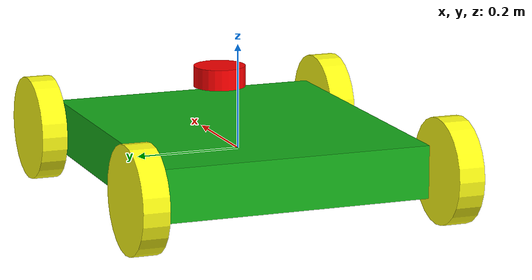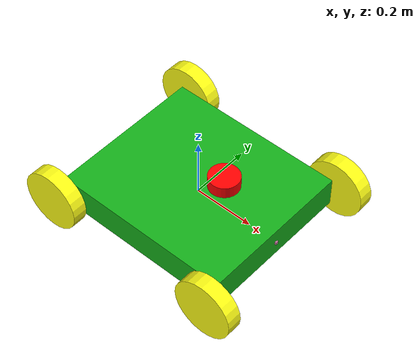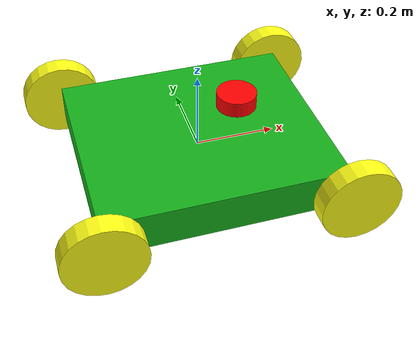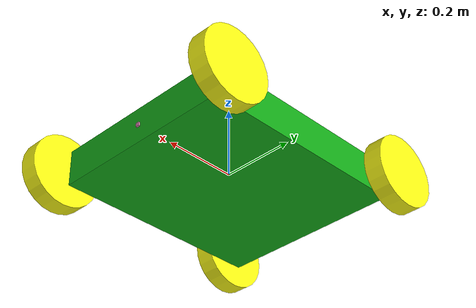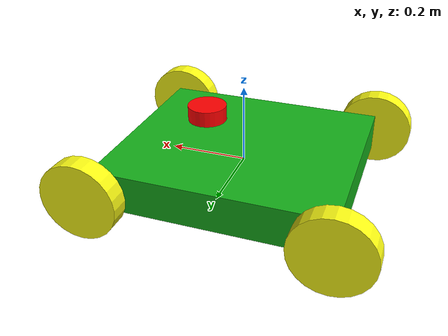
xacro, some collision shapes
<?xml version='1.0'?>

<robot name="myrobot" xmlns:xacro="http://www.ros.org/wiki/xacro">

  <xacro:property name="mass" value="5" />

  <xacro:property name="radius" value="0.1" />
  <xacro:property name="length" value="0.05" />

  <xacro:property name="wheel_width" value="0.010" />
  <xacro:property name="box_height" value="0.6" />
  <xacro:property name="box_width" value="0.52" />
  <xacro:property name="box_length" value="0.1" />
  <xacro:property name="euler" value="1.5707" />
  <xacro:property name="friction" value="0" />
  <xacro:property name="damping" value="0" />

  <link name='base_link'>
    <pose>0 0 0.1 0 0 0</pose>

    <inertial>
      <mass value="${mass}"/>
      <origin xyz="0.0 0 0.1" rpy=" 0 0 0"/>
      <inertia
          ixx="0.1" ixy="0" ixz="0"
          iyy="0.1" iyz="0"
          izz="0.1"
      />
    </inertial>

    <collision name='collision'>
      <geometry>
        <box size="${box_height} ${box_width} ${box_length} "/>
      </geometry>
    </collision>

    <visual name='govde_visual'>
      <origin xyz="0 0 0" rpy=" 0 0 0"/>
      <geometry>
        <box size="${box_height} ${box_width} ${box_length} "/>
      </geometry>
      <material name="green"/>
    </visual>

  </link>

  <link name="sol_on_teker">
    <collision name="collision">
      <origin xyz="0 0 0" rpy="0 ${euler} ${euler}"/>
      <geometry>
        <cylinder radius="${radius}" length="${length}"/>
      </geometry>
    </collision>

    <visual name="sol_on_teker_visual">
      <origin xyz="0 0 0" rpy="0 ${euler} ${euler}"/>
      <geometry>
        <cylinder radius="${radius}" length="${length}"/>
      </geometry>
      <material name="yellow"/>
    </visual>
    <inertial>
      <origin xyz="0 0 0" rpy="0 ${euler} ${euler}"/>
      <mass value="${mass}"/>
      <inertia
        ixx=".1" ixy="0.0" ixz="0.0"
        iyy=".1" iyz="0.0"
        izz=".1"/>
    </inertial>
  </link>

  <link name="sag_on_teker">
    <collision name="collision">
      <origin xyz="0 0 0" rpy="0 ${euler} ${euler}"/>
      <geometry>
        <cylinder radius="${radius}" length="${length}"/>
      </geometry>
    </collision>
    <visual name="sag_on_teker_visual">
      <origin xyz="0 0 0" rpy="0 ${euler} ${euler}"/>
      <geometry>
        <cylinder radius="${radius}" length="${length}"/>
      </geometry>
      <material name="yellow"/>
    </visual>
    <inertial>
      <origin xyz="0 0 0" rpy="0 ${euler} ${euler}"/>
      <mass value="${mass}"/>
      <inertia
        ixx=".1" ixy="0.0" ixz="0.0"
        iyy=".1" iyz="0.0"
        izz=".1"/>
    </inertial>
  </link>

  <link name="sag_arka_teker">
    <collision name="collision">
      <origin xyz="0 0 0" rpy="0 ${euler} ${euler}"/>
      <geometry>
        <cylinder radius="${radius}" length="${length}"/>
      </geometry>
    </collision>
    <visual name="sag_arka_teker_visual">
      <origin xyz="0 0 0" rpy="0 ${euler} ${euler}"/>
      <geometry>
        <cylinder radius="${radius}" length="${length}"/>
      </geometry>
      <material name="yellow"/>
    </visual>
    <inertial>
      <origin xyz="0 0 0" rpy="0 ${euler} ${euler}"/>
      <mass value="${mass}"/>
      <inertia
        ixx=".1" ixy="0.0" ixz="0.0"
        iyy=".1" iyz="0.0"
        izz=".1"/>
    </inertial>
  </link>

  <link name="sol_arka_teker">
    <collision name="collision">
      <origin xyz="0 0 0" rpy="0 ${euler} ${euler}"/>
      <geometry>
        <cylinder radius="${radius}" length="${length}"/>
      </geometry>
    </collision>
    <visual name="sol_arka_teker_visual">
      <origin xyz="0 0 0" rpy="0 ${euler} ${euler}"/>
      <geometry>
        <cylinder radius="${radius}" length="${length}"/>
      </geometry>
      <material name="yellow"/>
    </visual>
    <inertial>
      <origin xyz="0 0 0" rpy="0 ${euler} ${euler}"/>
      <mass value="${mass}"/>
      <inertia
        ixx=".1" ixy="0.0" ixz="0.0"
        iyy=".1" iyz="0.0"
        izz=".1"/>
    </inertial>
  </link>

  <link name="laser_frame">
    <visual>
        <geometry>
            <cylinder radius="0.05" length="0.04"/>
        </geometry>
        <material name="red"/>
    </visual>
    <collision>
        <geometry>
            <cylinder radius="0.05" length="0.04"/>
        </geometry>
    </collision>
    <inertial>

      <origin xyz="0 0 0" rpy="0 ${euler} ${euler}"/>
      <mass value="${mass}"/>
      <inertia
        ixx=".1" ixy="0.0" ixz="0.0"
        iyy=".1" iyz="0.0"
        izz=".1"/>
    </inertial>
  </link>

  <material name="red">
    <color rgba="1 0 0 1"/>
  </material>

  <link name="ultrasonic_sensor_link">
    <inertial>
      <mass value="0.001" />
      <origin xyz="0 0 0" rpy="0 0 0" />
      <inertia ixx="0.000000017" ixy="0" ixz="0" iyy="0.000000017" iyz="0" izz="0.000000017" />
    </inertial>
    <visual>
      <origin xyz="0 0 0" rpy="0 0 0" />
      <geometry>
        <mesh filename="package://custom_robot/meshes/max_sonar_ez4.dae"/>
      </geometry>
    </visual>
    <collision>
      <origin xyz="0 0 0" rpy="0 0 0" />
      <geometry>
        <box size="0.01 0.01 0.01" />
      </geometry>
    </collision>
  </link>

  <joint name="ultrasonic_sensor_joint" type="fixed">

    <origin xyz="${length*2 + box_length*2}  0 0 " rpy=" 0 0 0" />

    <parent link="base_link" />
    <child link="ultrasonic_sensor_link" />
    <axis xyz="0 0 0" />
  </joint>

  <joint name="laser_joint" type="fixed">
    <parent link="base_link"/>
    <child link="laser_frame"/>
    <origin xyz="0.10 0 0.12" rpy="0 0 0"/>
</joint>

  <joint type="continuous" name="sol_on_teker_joint">

    <origin xyz="${length*2 + box_length*2}  ${length*2 + box_length*2} 0 " rpy=" 0 0 0" />

    <child link="sol_on_teker"/>
    <parent link="base_link"/>
    <axis xyz="0 1 0" rpy="0 0 0"/>
    <joint_properties damping="${damping}" friction="${friction}"/>
  </joint>

  <joint type="continuous" name="sol_arka_teker_joint">
    <origin xyz=" -${length*2 + box_length*2}  -${length*2 + box_length*2} 0 " rpy=" 0 0 0" />
    <child link="sol_arka_teker"/>
    <parent link="base_link"/>
    <axis xyz="0 1 0" rpy="0 0 0"/>
    <joint_properties damping="${damping}" friction="${friction}"/>
  </joint>

  <joint type="continuous" name="sag_on_teker_joint">
    <origin xyz=" -${length*2 + box_length*2}  ${length*2 + box_length*2} 0 " rpy=" 0 0 0" />
    <child link="sag_on_teker"/>
    <parent link="base_link"/>
    <axis xyz="0 1 0" rpy="0 0 0"/>
    <joint_properties damping="${damping}" friction="${friction}"/>
  </joint>

  <joint type="continuous" name="sag_arka_teker_joint">
    <origin xyz="${length*2 + box_length*2}  -${length*2 + box_length*2} 0 " rpy=" 0 0 0" />
    <child link="sag_arka_teker"/>
    <parent link="base_link"/>
    <axis xyz="0 1 0" rpy="0 0 0"/>
    <joint_properties damping="${damping}" friction="${friction}"/>
  </joint>

  <transmission name="tran1">
  <type>transmission_interface/SimpleTransmission</type>
  <joint name="sol_on_teker_joint">
    <hardwareInterface>hardware_interface/EffortJointInterface</hardwareInterface>
  </joint>
  <actuator name="motor1">
    <hardwareInterface>hardware_interface/EffortJointInterface</hardwareInterface>
    <mechanicalReduction>1</mechanicalReduction>
  </actuator>
  </transmission>

  <transmission name="tran2">
  <type>transmission_interface/SimpleTransmission</type>
  <joint name="sol_arka_teker_joint">
    <hardwareInterface>hardware_interface/EffortJointInterface</hardwareInterface>
  </joint>
  <actuator name="motor2">
    <hardwareInterface>hardware_interface/EffortJointInterface</hardwareInterface>
    <mechanicalReduction>2</mechanicalReduction>
  </actuator>
  </transmission>

  <transmission name="tran3">
  <type>transmission_interface/SimpleTransmission</type>
  <joint name="sag_on_teker_joint">
    <hardwareInterface>hardware_interface/EffortJointInterface</hardwareInterface>
  </joint>
  <actuator name="motor3">
    <hardwareInterface>hardware_interface/EffortJointInterface</hardwareInterface>
    <mechanicalReduction>3</mechanicalReduction>
  </actuator>
  </transmission>

  <transmission name="tran4">
  <type>transmission_interface/SimpleTransmission</type>
  <joint name="sag_arka_teker_joint">
    <hardwareInterface>hardware_interface/EffortJointInterface</hardwareInterface>
  </joint>
  <actuator name="motor4">
    <hardwareInterface>hardware_interface/EffortJointInterface</hardwareInterface>
    <mechanicalReduction>4</mechanicalReduction>
  </actuator>
  </transmission>

  <gazebo>
    <plugin name="skid_steer_drive_controller" filename="libgazebo_ros_skid_steer_drive.so">
      <updateRate>20.0</updateRate>
      <robotNamespace>/</robotNamespace>
      <leftFrontJoint>sol_on_teker_joint</leftFrontJoint>
      <rightFrontJoint>sag_on_teker_joint</rightFrontJoint>
      <leftRearJoint>sol_arka_teker_joint</leftRearJoint>
      <rightRearJoint>sag_arka_teker_joint</rightRearJoint>
      <wheelSeparation>0.5</wheelSeparation>
      <wheelDiameter>0.2</wheelDiameter>
      <robotBaseFrame>base_link</robotBaseFrame>
      <torque>5</torque>
      <MaxForce>5.0</MaxForce>
      <commandTopic>cmd_vel</commandTopic>
      <broadcastTF>true</broadcastTF>
      <covariance_x>0.000100</covariance_x>
      <covariance_y>0.000100</covariance_y>
      <covariance_yaw>0.010000</covariance_yaw>
    </plugin>
</gazebo>

  <gazebo>
        <plugin name="gazebo_ros_control" filename="libgazebo_ros_control.so">
            <robotNamespace>/myrobot</robotNamespace>
            <robotSimType>gazebo_ros_control/DefaultRobotHWSim</robotSimType>
        </plugin>
  </gazebo>

  <gazebo reference="ultrasonic_sensor_link">
    <sensor type="ray" name="TeraRanger">
       <pose>0 0 0 0 0 0</pose>
       <visualize>true</visualize>
       <update_rate>50</update_rate>
       <ray>
          <scan>
             <horizontal>
                <samples>10</samples>
                <resolution>1</resolution>
                <min_angle>-0.14835</min_angle>
                <max_angle>0.14835</max_angle>
             </horizontal>
             <vertical>
                <samples>10</samples>
                <resolution>1</resolution>
                <min_angle>-0.04</min_angle>
                <max_angle>0.04</max_angle>
             </vertical>
          </scan>
          <range>
             <min>0.01</min>
             <max>2</max>
             <resolution>0.02</resolution>
          </range>
       </ray>
       <plugin filename="libgazebo_ros_range.so" name="gazebo_ros_range">
          <gaussianNoise>0.005</gaussianNoise>
          <alwaysOn>true</alwaysOn>
          <updateRate>50</updateRate>
          <topicName>/ir_sensor</topicName>
          <frameName>ultrasonic_sensor_link</frameName>
          <radiation>INFRARED</radiation>
          <fov>0.2967</fov>
       </plugin>
    </sensor>
    </gazebo>

  <gazebo reference="laser_frame">
    <sensor type="ray" name="head_rplidar_sensor">
      <pose>0 0 0.5 0 0 0</pose>
      <visualize>true</visualize>
      <update_rate>100</update_rate>
      <ray>
        <scan>
          <horizontal>
            <samples>720</samples>
            <resolution>1</resolution>
            <min_angle>-2.0</min_angle>
            <max_angle>2.0</max_angle>
          </horizontal>
        </scan>
        <range>
          <min>0.2</min>
          <max>12.0</max>
          <resolution>0.01</resolution>
        </range>
        <noise>
          <type>gaussian</type>
          <mean>0.0</mean>
          <stddev>0.01</stddev>
        </noise>
      </ray>
      <plugin name="gazebo_ros_head_rplidar_controller" filename="libgazebo_ros_laser.so">
        <topicName>scan</topicName>
        <frameName>laser_frame</frameName>
      </plugin>
    </sensor>
  </gazebo>

  <material name="yellow" >
    <color rgba="1.0 1.0 0.0784313725490196 1.0" />
  </material>
  <material name="green" >
    <color rgba="0.08235294117647059 0.6901960784313725 0.10196078431372549 1.0" />
  </material>

</robot>
